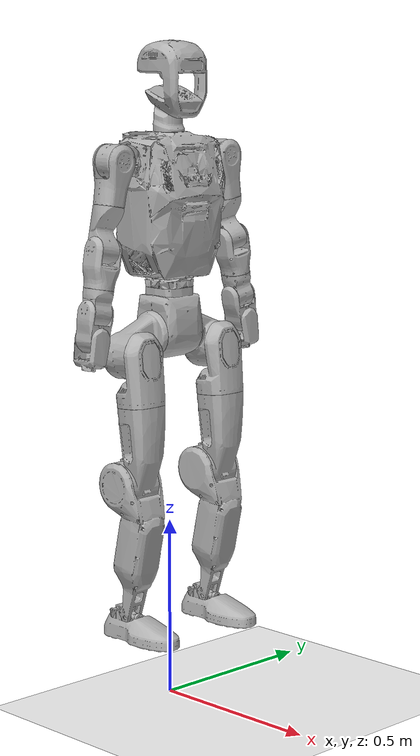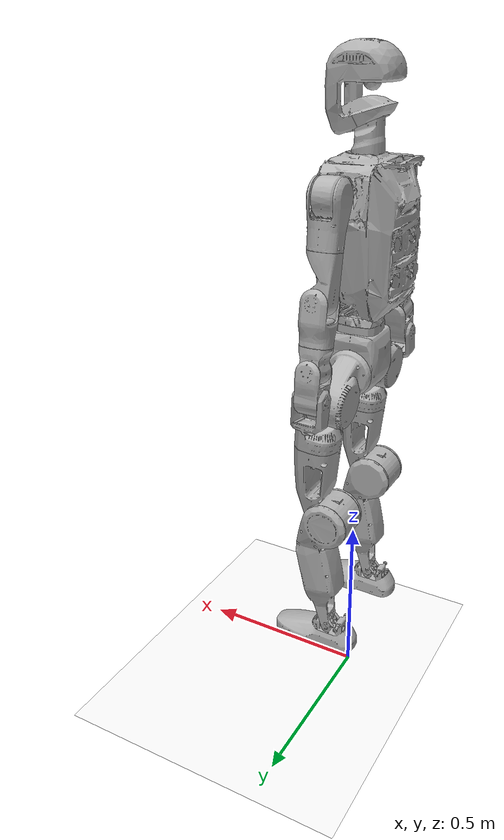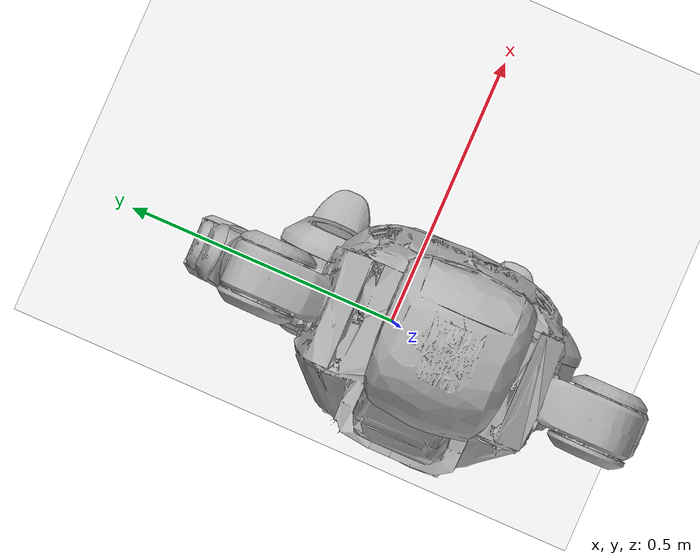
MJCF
<mujoco model="m2v6_27dof_rev_1_0">
    <compiler angle="radian" meshdir="meshes_reduce/" autolimits="true"/>

    <default>
        <default class="m2v6">
            <geom condim="1" contype="0" conaffinity="0"/>
            <joint damping="0.05" armature="0.01" frictionloss="0.2"/>

            <default class="hip">
                <default class="hip_pitch">
                    <joint axis="0 1 0" range="-2.71368 2.87138" actuatorfrcrange="-130 130" armature="0.063828"/>
                </default>
                <default class="hip_roll">
                    <joint axis="1 0 0" actuatorfrcrange="-330 330" armature="0.274752"/>
                </default>
                <default class="hip_yaw">
                    <joint axis="0 0 1" range="-2.87979 2.87979" actuatorfrcrange="-70 70" armature="0.057648938"/>
                </default>
            </default>
            <default class="knee">
                <joint axis="0 1 0" range="-0.08727 2.87979" actuatorfrcrange="-330 330" armature="0.274752"/>
            </default>
            <default class="ankle">
                <default class="ankle_pitch">
                    <joint axis="0 1 0" range="-0.87266 0.5236" actuatorfrcrange="-60 60" armature="0.03875"/>
                </default>
                <default class="ankle_roll">
                    <joint axis="1 0 0" range="-0.2618 0.2618" actuatorfrcrange="-60 60" armature="0.03875"/>
                </default>
            </default>
            <default class="waist">
                <joint axis="0 0 1" range="-2.44346 2.44346" actuatorfrcrange="-70 70" armature="0.057648938"/>
            </default>
            <default class="shoulder">
                <default class="shoulder_pitch">
                    <joint axis="0 1 0" range="-3.14159 2.44346" actuatorfrcrange="-90 90" armature="0.031752"/>
                </default>
                <default class="shoulder_roll">
                    <joint axis="1 0 0" actuatorfrcrange="-36 36" armature="0.023328"/>
                </default>
                <default class="shoulder_yaw">
                    <joint axis="0 0 1" range="-2.79253 2.79253" actuatorfrcrange="-36 36" armature="0.023328"/>
                </default>
            </default>
            <default class="elbow">
                <joint axis="0 1 0" range="-2.44346 1.5708" actuatorfrcrange="-36 36" armature="0.023328"/>
            </default>
            <default class="wrist">
                <default class="wrist_yaw">
                    <joint axis="0 0 1" range="-2.44346 2.44346" actuatorfrcrange="-36 36" armature="0.023328"/>
                </default>
                <default class="wrist_pitch">
                    <joint axis="0 1 0" range="-1.65806 1.65806" actuatorfrcrange="-36 36" armature="0.023328"/>
                </default>
                <default class="wrist_roll">
                    <joint axis="1 0 0" range="-1.91986 1.91986" actuatorfrcrange="-36 36" armature="0.023328"/>
                </default>
            </default>

            <default class="visual">
                <geom group="2" type="mesh" density="0" material="silver" contype="0" conaffinity="0"/>
            </default>
            <default class="collision">
                <geom group="3" rgba=".2 .6 .2 .3" type="capsule" contype="1" conaffinity="1"/>
                <default class="foot_capsule">
                <geom type="capsule" size="0.01"/>
                </default>
            </default>
            <site group="5" rgba="1 0 0 1"/>
        </default>
    </default>

    <asset>
        <material name="silver" rgba="0.7 0.7 0.7 1"/>
        <material name="black" rgba="0.2 0.2 0.2 1"/>

        <mesh name="pelvis" file="pelvis_link.STL"/>

        <mesh name="left_hip_pitch_link" file="left_hip_pitch_link.STL"/>
        <mesh name="left_hip_roll_link" file="left_hip_roll_link.STL"/>
        <mesh name="left_hip_yaw_link" file="left_hip_yaw_link.STL"/>
        <mesh name="left_knee_link" file="left_knee_link.STL"/>
        <mesh name="left_ankle_pitch_link"
              file="left_ankle_pitch_link.STL"/>
        <mesh name="left_ankle_roll_link" file="left_ankle_roll_link.STL"/>
        <mesh name="right_hip_pitch_link" file="right_hip_pitch_link.STL"/>
        <mesh name="right_hip_roll_link" file="right_hip_roll_link.STL"/>
        <mesh name="right_hip_yaw_link" file="right_hip_yaw_link.STL"/>
        <mesh name="right_knee_link" file="right_knee_link.STL"/>
        <mesh name="right_ankle_pitch_link"
              file="right_ankle_pitch_link.STL"/>
        <mesh name="right_ankle_roll_link"
              file="right_ankle_roll_link.STL"/>

        <mesh name="torso_link" file="torso_link.STL"/>

        <mesh name="left_shoulder_pitch_link"
              file="left_shoulder_pitch_link.STL"/>
        <mesh name="left_shoulder_roll_link"
              file="left_shoulder_roll_link.STL"/>
        <mesh name="left_shoulder_yaw_link"
              file="left_shoulder_yaw_link.STL"/>
        <mesh name="left_elbow_link" file="left_elbow_link.STL"/>
        <mesh name="left_wrist_yaw_link" file="left_wrist_yaw_link.STL"/>
        <mesh name="left_wrist_pitch_link" file="left_wrist_pitch_link.STL"/>
        <mesh name="left_wrist_roll_link" file="left_wrist_roll_link.STL"/>
        <mesh name="left_rubber_hand" file="left_hand_link.STL"/>

        <mesh name="right_shoulder_pitch_link"
              file="right_shoulder_pitch_link.STL"/>
        <mesh name="right_shoulder_roll_link"
              file="right_shoulder_roll_link.STL"/>
        <mesh name="right_shoulder_yaw_link"
              file="right_shoulder_yaw_link.STL"/>
        <mesh name="right_elbow_link" file="right_elbow_link.STL"/>
        <mesh name="right_wrist_yaw_link" file="right_wrist_yaw_link.STL"/>
        <mesh name="right_wrist_pitch_link" file="right_wrist_pitch_link.STL"/>
        <mesh name="right_wrist_roll_link" file="right_wrist_roll_link.STL"/>
        <mesh name="right_rubber_hand" file="right_hand_link.STL"/>

        <mesh name="head_yaw_link" file="head_yaw_link.STL" />
        <mesh name="head_pitch_link" file="head_pitch_link.STL" />

    </asset>

    <worldbody>
        <light name="spotlight" mode="targetbodycom" target="pelvis_link" pos="0 -2 4" exponent="20"/>
        <body name="pelvis_link" pos="0 0 1.1" childclass="m2v6">
            <camera name="tracking" pos="1.734 -1.135 .35" xyaxes="0.552 0.834 -0.000 -0.170 0.112 0.979" mode="trackcom"/>
            <inertial pos="0.000404 2.32e-06 -0.0507628" quat="0.999814 0.00051 -0.0192091 -0.001634" mass="3.751" diaginertia="0.0136351 0.0123701 0.0106031"/>
            <freejoint name="floating_base_joint"/>
            <geom class="visual" mesh="pelvis"/>
            <geom name="pelvis_collision" class="collision" type="sphere" size="0.08" pos="0 0 -0.065"/>
            <site name="imu_in_pelvis" size="0.01" pos="0.0 0.0 -0.12153" />

            <body name="left_hip_pitch_link" pos="0 0.0645 -0.066">
                <inertial pos="0.0085536 0.0788795 -0.043761" quat="0.3931855 0.8881544 0.2181438 -0.0948693" mass="2.8802" diaginertia="0.0042339 0.0036165 0.0020071"/>
                <joint name="left_hip_pitch_joint" class="hip_pitch"/>
                <geom class="visual" mesh="left_hip_pitch_link"/>

                <body name="left_hip_roll_link" pos="0.0039383 0.0855 -0.049845" quat="0.999223 0 -0.0394143 0">
                    <inertial pos="0.0362143 0.0001356 -0.0989265" quat="0.9866859 -0.0010695 -0.1620377 0.0139144" mass="1.49636" diaginertia="0.0058925 0.0055939 0.0024366"/>
                    <joint name="left_hip_roll_joint" pos="0 0 0" range="-0.5236 2.96706" class="hip_roll" />
                    <geom class="visual" mesh="left_hip_roll_link"/>
                    <geom name="left_hip_collision" class="collision" size="0.056" fromto="0.02 0.0 0.015 0.02 0.0 -0.08"/>

                    <body name="left_hip_yaw_link" pos="0.026 0 -0.1505">
                        <inertial pos="-0.0382311 0.0043708 -0.1646913" quat="0.5571708 -0.1671556 -0.0999463 0.8072363" mass="3.9129" diaginertia="0.0249074 0.023221 0.0046711"/>
                        <joint name="left_hip_yaw_joint" class="hip_yaw"/>
                        <geom class="visual" mesh="left_hip_yaw_link"/>
                        <geom name="left_thigh_collision" class="collision" size="0.056" fromto="0.0 0.0 0.0 0.0 0.0 -0.05"/>

                        <body name="left_knee_link" pos="-0.058 0 -0.2045" quat="0.999223 0 0.0394143 0">
                            <inertial pos="0.0344943 -0.000167 -0.1592361" quat="0.9998913 -0.0011232 -0.0123323 0.0079994" mass="3.11084" diaginertia="0.0339105 0.0334615 0.0062204"/>
                            <joint name="left_knee_joint" class="knee"/>
                            <geom class="visual" mesh="left_knee_link"/>
                            <geom name="left_knee_collision" class="collision" type="cylinder" pos="0 0 0" euler="1.57 0 0" size="0.065 0.06" />
                            <geom name="left2_knee_collision" pos="0.08 0.0 -0.05" euler ="0 -0.25 0" class="collision" type="box" size="0.005 0.045 0.03" />
                            <geom name="left_shin_collision" class="collision" size="0.048" fromto="0.045 0.0 -0.089 0.009 0.0 -0.25"/>
                            <geom name="left_linkage_brace_collision" class="collision" size="0.03" fromto="0.01 0.0 -0.28 -0.02 0.0 -0.375"/>

                            <body name="left_ankle_pitch_link" pos="0 0 -0.375">
                                <inertial pos="-0.0005629 0 -0.000547" quat="0.5093492 0.4904726 0.4904726 0.5093492" mass="0.15783" diaginertia="4.625e-05 4.43942e-05 1.33758e-05"/>
                                <joint name="left_ankle_pitch_joint" class="ankle_pitch"/>
                                <geom class="visual" mesh="left_ankle_pitch_link"/>

                                <body name="left_ankle_roll_link">
                                    <site name="left_foot" rgba="1 0 0 1"/>
                                    <inertial pos="0.0223678 -1.4e-06 -0.0293285" quat="5.489121e-06 0.6585183 9.952085e-06 0.7525647" mass="1.36478" diaginertia="0.0067589 0.0065105 0.0013947"/>
                                    <joint name="left_ankle_roll_joint" class="ankle_roll"/>
                                    <geom class="visual" mesh="left_ankle_roll_link"/>

                                    <geom name="left_foot1_collision" class="foot_capsule" fromto="0.045 -0.045 -0.051 0.12 -0.04 -0.051"/>
                                    <geom name="left_foot2_collision" class="foot_capsule" fromto="-0.064 -0.033 -0.051 0.143 -0.033 -0.051"/>
                                    <geom name="left_foot3_collision" class="foot_capsule" fromto="-0.070 -0.026 -0.051 0.156 -0.026 -0.051"/>
                                    <geom name="left_foot4_collision" class="foot_capsule" fromto="-0.074 -0.018 -0.051 0.163 -0.018 -0.051"/>
                                    <geom name="left_foot5_collision" class="foot_capsule" fromto="-0.075 -0.01 -0.051 0.166 -0.01 -0.051"/>
                                    <geom name="left_foot6_collision" class="foot_capsule" fromto="-0.076 0.0 -0.051 0.167 0.0 -0.051"/>
                                    <geom name="left_foot7_collision" class="foot_capsule" fromto="-0.075 0.01 -0.051 0.166 0.01 -0.051"/>
                                    <geom name="left_foot8_collision" class="foot_capsule" fromto="-0.074 0.018 -0.051 0.163 0.018 -0.051"/>
                                    <geom name="left_foot9_collision" class="foot_capsule" fromto="-0.071 0.026 -0.051 0.156 0.026 -0.051"/>
                                    <geom name="left_foot10_collision" class="foot_capsule" fromto="-0.064 0.033 -0.051 0.142 0.033 -0.051"/>
                                    <geom name="left_foot11_collision" class="foot_capsule" fromto="0.045 0.045 -0.051 0.124 0.04 -0.051"/>
                                </body>
                            </body>
                        </body>
                    </body>
                </body>
            </body>

            <body name="right_hip_pitch_link" pos="0 -0.0645 -0.066">
                <inertial pos="0.0084981 -0.0785883 -0.0434711" quat="0.8895725 0.3905326 0.0944105 -0.2173286" mass="2.8802" diaginertia="0.0043342 0.0036905 0.002026"/>
                <joint name="right_hip_pitch_joint" class="hip_pitch"/>
                <geom class="visual" mesh="right_hip_pitch_link"/>

                <body name="right_hip_roll_link" pos="0.0039383 -0.0855 -0.049845" quat="0.999223 0 -0.0394143 0">
                    <inertial pos="0.0362144 -0.0001352 -0.0989269" quat="0.9866419 0.0016207 -0.1620342 -0.0167358" mass="1.49635" diaginertia="0.0058924 0.0055937 0.0024365"/>
                    <joint name="right_hip_roll_joint" pos="0 0 0" range="-2.96706 0.5236"  class="hip_roll"/>
                    <geom class="visual" mesh="right_hip_roll_link"/>
                    <geom name="right_hip_collision" class="collision" size="0.056" fromto="0.02 0.0 0.015 0.02 0.0 -0.08"/>

                    <body name="right_hip_yaw_link" pos="0.026 0 -0.1505">
                        <inertial pos="-0.0382354 -0.0043703 -0.164687" quat="0.80724 -0.099955 -0.1671828 0.5571557" mass="3.9129" diaginertia="0.0249068 0.02322 0.0046714"/>
                        <joint name="right_hip_yaw_joint" class="hip_yaw"/>
                        <geom class="visual" mesh="right_hip_yaw_link"/>
                        <geom name="right_thigh_collision" class="collision" size="0.056" fromto="0.0 0.0 0.0 0.0 0.0 -0.05"/>

                        <body name="right_knee_link" pos="-0.058 0 -0.2045" quat="0.999223 0 0.0394143 0">
                            <inertial pos="0.0344941 0.0001685 -0.1592379" quat="0.9998954 0.0010636 -0.0123263 -0.007489" mass="3.11092" diaginertia="0.033912 0.0334629 0.0062206"/>
                            <joint name="right_knee_joint" class="knee"/>
                            <geom class="visual" mesh="right_knee_link"/>
                            <geom name="right_knee_collision" class="collision" type="cylinder" pos="0 0 0" euler="1.57 0 0" size="0.065 0.06" />
                            <geom name="right2_knee_collision" pos="0.08 0.0 -0.05" euler ="0 -0.25 0" class="collision" type="box" size="0.005 0.045 0.03" />
                            <geom name="right_shin_collision" class="collision" size="0.048" fromto="0.045 0.0 -0.089 0.009 0.0 -0.25"/>
                            <geom name="right_linkage_brace_collision" class="collision" size="0.03" fromto="0.01 0.0 -0.28 -0.02 0.0 -0.375"/>

                            <body name="right_ankle_pitch_link" pos="0 0 -0.375">
                                <inertial pos="-0.0005629 0 -0.000547" quat="0.5093492 0.4904726 0.4904726 0.5093492" mass="0.15783" diaginertia="4.625e-05 4.43942e-05 1.33758e-05"/>
                                <joint name="right_ankle_pitch_joint" class="ankle_pitch"/>
                                <geom class="visual" mesh="right_ankle_pitch_link"/>

                                <body name="right_ankle_roll_link">
                                    <site name="right_foot" pos="0 0 0"/>
                                    <inertial pos="0.0223678 -1.4e-06 -0.0293285" quat="5.489121e-06 0.6585183 9.952085e-06 0.7525647" mass="1.36478" diaginertia="0.0067589 0.0065105 0.0013947"/>
                                    <joint name="right_ankle_roll_joint" class="ankle_roll"/>
                                    <geom class="visual" mesh="right_ankle_roll_link"/>

                                    <geom name="right_foot1_collision" class="foot_capsule" fromto="0.045 -0.045 -0.051 0.12 -0.04 -0.051"/>
                                    <geom name="right_foot2_collision" class="foot_capsule" fromto="-0.064 -0.033 -0.051 0.143 -0.033 -0.051"/>
                                    <geom name="right_foot3_collision" class="foot_capsule" fromto="-0.070 -0.026 -0.051 0.156 -0.026 -0.051"/>
                                    <geom name="right_foot4_collision" class="foot_capsule" fromto="-0.074 -0.018 -0.051 0.163 -0.018 -0.051"/>
                                    <geom name="right_foot5_collision" class="foot_capsule" fromto="-0.075 -0.01 -0.051 0.166 -0.01 -0.051"/>
                                    <geom name="right_foot6_collision" class="foot_capsule" fromto="-0.076 0.0 -0.051 0.167 0.0 -0.051"/>
                                    <geom name="right_foot7_collision" class="foot_capsule" fromto="-0.075 0.01 -0.051 0.166 0.01 -0.051"/>
                                    <geom name="right_foot8_collision" class="foot_capsule" fromto="-0.074 0.018 -0.051 0.163 0.018 -0.051"/>
                                    <geom name="right_foot9_collision" class="foot_capsule" fromto="-0.071 0.026 -0.051 0.156 0.026 -0.051"/>
                                    <geom name="right_foot10_collision" class="foot_capsule" fromto="-0.064 0.033 -0.051 0.142 0.033 -0.051"/>
                                    <geom name="right_foot11_collision" class="foot_capsule" fromto="0.045 0.045 -0.051 0.124 0.04 -0.051"/>
                                </body>
                            </body>
                        </body>
                    </body>
                </body>
            </body>

            <body name="torso_link" pos="0 0 0">
                <inertial pos="-0.0189168 0.0012999 0.2633349" quat="0.999788 1.340745e-05 -0.0205878 0.00028" mass="15.85368" diaginertia="0.271644 0.237095 0.110372"/>
                <joint name="waist_joint" pos="0 0 0" class="waist" />
                <geom class="visual" mesh="torso_link"/>
                <geom name="torso_collision" class="collision" type="box" size="0.065 0.1 0.19" pos="0 0 0.28"/>
                <geom name="torso2_collision" class="collision" type="cylinder" size="0.06 0.03" pos="0 0 0.06"/>

                <site name="imu_in_torso" size="0.01" pos="-0.03959 -0.00224 0.14792"/>

                <body name="left_shoulder_pitch_link" pos="0 0.13245 0.39503" quat="0.9961948 0.0871543 0 0">
                    <inertial pos="0.0021981 0.0545562 0.0012038" quat="0.683798 0.7294789 0.0161216 -0.0045821" mass="0.80439" diaginertia="0.0010368 0.0009251 0.0004845"/>
                    <joint name="left_shoulder_pitch_joint" class="shoulder_pitch"/>
                    <geom class="visual" mesh="left_shoulder_pitch_link"/>
                    <geom name="left_shoulder_pitch_collision" pos="0 0.067 0" euler="0 1.57 0" class="collision" type="cylinder" size="0.045 0.04"/>

                    <body name="left_shoulder_roll_link" pos="0 0.067888 0">
                        <inertial pos="0.0007508 -0.0004299 -0.0743968" quat="0.999684 -0.0016586 -0.0250111 -0.0018752" mass="0.87106" diaginertia="0.0017015 0.0018499 0.0007555"/>
                        <joint name="left_shoulder_roll_joint" range="-0.20944 3.1765" class="shoulder_roll"/>
                        <geom class="visual" mesh="left_shoulder_roll_link"/>

                        <body name="left_shoulder_yaw_link" pos="0 0 -0.11641">
                            <inertial pos="-0.0023623 0.0042327 -0.0980338" quat="0.6304836 0.0184993 0.027176 0.7755061" mass="0.72854" diaginertia="0.0013035 0.0013347 0.0003721"/>
                            <joint name="left_shoulder_yaw_joint" class="shoulder_yaw"/>
                            <geom class="visual" mesh="left_shoulder_yaw_link"/>
                            <geom name="left_shoulder_yaw_collision" class="collision" size="0.042" fromto="0.0 0.0 0.0 0.0 0.0 0.028"/>

                            <body name="left_elbow_link" pos="0 0 -0.12009">
                                <inertial pos="-3.03e-05 0.000562 -0.0637671" quat="0.710494 0.0401343 -0.0370188 0.7015819" mass="0.73794" diaginertia="0.00094 0.0010846 0.0005811"/>
                                <joint name="left_elbow_joint" class="elbow"/>
                                <geom class="visual" mesh="left_elbow_link"/>

                                <geom name="left_elbow_collision" pos="0 0 0" euler="1.57 0 0" class="collision" type="cylinder" size="0.035 0.045" />

                                <body name="left_wrist_yaw_link" pos="0 0 -0.10341">
                                    <inertial pos="6.16e-06 0.0035763 -0.0533539" quat="0.722265 0.6899619 -0.0304978 -0.0368214" mass="0.63961" diaginertia="0.000462 0.0002745 0.0004576"/>
                                    <joint name="left_wrist_yaw_joint" class="wrist_yaw"/>
                                    <geom class="visual" mesh="left_wrist_yaw_link"/>

                                    <body name="left_wrist_pitch_link" pos="0 0 -0.062589">
                                        <inertial pos="-0.0044641 0.0009752 -0.0590826" quat="0.687268 0.003598 -0.0648158 0.7234975" mass="0.65835" diaginertia="0.0006618 0.0007666 0.0003909"/>
                                        <joint name="left_wrist_pitch_joint" class="wrist_pitch"/>
                                        <geom class="visual" mesh="left_wrist_pitch_link"/>
                                        <geom name="left_wrist_pitch_collision" pos="0 0 0" euler="1.57 0 0" class="collision" type="cylinder" size="0.033 0.038" />

                                        <body name="left_wrist_roll_link" pos="0 0 -0.07">
                                            <inertial pos="-0.0010672 5.79e-06 -0.0387109" quat="0.6887192 0.1636446 0.1633307 0.6871749" mass="0.21364" diaginertia="0.0004477 0.0002932 0.0002797"/>
                                            <joint name="left_wrist_roll_joint" class="wrist_roll"/>
                                            <geom class="visual" mesh="left_wrist_roll_link"/>
                                            <geom name="left_wrist_roll_collision" class="collision" size="0.04" fromto="0.0 0.0 -0.05 0.0 0.0 0.0"/>

                                        </body>
                                    </body>
                                </body>
                            </body>
                        </body>
                    </body>
                </body>

                <body name="right_shoulder_pitch_link" pos="0 -0.13245 0.39503" quat="0.9961948 -0.0871543 0 0">
                    <inertial pos="0.0021976 -0.0545562 0.0013209" quat="0.7284641 0.6848601 0.0051751 -0.0167327" mass="0.80437" diaginertia="0.0010366 0.0009249 0.0004844"/>
                    <joint name="right_shoulder_pitch_joint" class="shoulder_pitch"/>
                    <geom class="visual" mesh="right_shoulder_pitch_link"/>
                    <geom name="right_shoulder_pitch_collision" pos="0 -0.067 0" euler="0 1.57 0" class="collision" type="cylinder" size="0.045 0.04"/>

                    <body name="right_shoulder_roll_link" pos="0 -0.067888 0">
                        <inertial pos="0.000761 0.0003239 -0.0743964" quat="0.9996851 0.0022652 -0.0249604 0.0012388" mass="0.87075" diaginertia="0.0017014 0.0018494 0.0007551"/>
                        <joint name="right_shoulder_roll_joint" range="-3.1765 0.20944" class="shoulder_roll"/>
                        <geom class="visual" mesh="right_shoulder_roll_link"/>

                        <body name="right_shoulder_yaw_link" pos="0 0 -0.11641">
                            <inertial pos="-0.0022424 -0.0042335 -0.0979902" quat="0.7759291 0.0278039 0.0192985 0.6299115" mass="0.72855" diaginertia="0.0013025 0.0013336 0.0003723"/>
                            <joint name="right_shoulder_yaw_joint" class="shoulder_yaw"/>
                            <geom class="visual" mesh="right_shoulder_yaw_link"/>
                            <geom name="right_shoulder_yaw_collision" class="collision" size="0.042" fromto="0.0 0.0 0.0 0.0 0.0 0.028"/>

                            <body name="right_elbow_link" pos="0 0 -0.12009">
                                <inertial pos="9.493e-05 -0.0005624 -0.0637674" quat="0.70136 -0.0362373 0.0408741 0.7107111" mass="0.73793" diaginertia="0.00094 0.0010846 0.000581"/>
                                <joint name="right_elbow_joint" class="elbow"/>
                                <geom class="visual" mesh="right_elbow_link"/>
                                <geom name="right_elbow_collision" pos="0 0 0" euler="1.57 0 0" class="collision" type="cylinder" size="0.035 0.045" />

                                <body name="right_wrist_yaw_link" pos="0 0 -0.10341">
                                    <inertial pos="-0.0001411 -0.0035802 -0.0533539" quat="0.6902387 0.7222323 0.0327514 0.0296374" mass="0.63961" diaginertia="0.0004618 0.0002744 0.0004575"/>
                                    <joint name="right_wrist_yaw_joint" class="wrist_yaw"/>
                                    <geom class="visual" mesh="right_wrist_yaw_link"/>

                                    <body name="right_wrist_pitch_link" pos="0 0 -0.062589">
                                        <inertial pos="-0.0044643 -0.0008322 -0.0590832" quat="0.7237397 -0.0661447 0.004944 0.6868779" mass="0.65834" diaginertia="0.000662 0.0007667 0.0003908"/>
                                        <joint name="right_wrist_pitch_joint" class="wrist_pitch"/>
                                        <geom class="visual" mesh="right_wrist_pitch_link"/>
                                        <geom name="right_wrist_pitch_collision" pos="0 0 0" euler="1.57 0 0" class="collision" type="cylinder" size="0.033 0.038" />

                                        <body name="right_wrist_roll_link" pos="0 0 -0.07">
                                            <inertial pos="-0.001584 5.71e-06 -0.038157" quat="0.6785642 0.2015935 0.2012403 0.6770621" mass="0.21663" diaginertia="0.0004567 0.0003019 0.0002804"/>
                                            <joint name="right_wrist_roll_joint" class="wrist_roll"/>
                                            <geom class="visual" mesh="right_wrist_roll_link"/>
                                            <geom name="right_wrist_roll_collision" class="collision" size="0.04" fromto="0.0 0.0 -0.05 0.0 0.0 0.0"/>

                                        </body>
                                    </body>
                                </body>
                            </body>
                        </body>
                    </body>
                </body>

                <body name="head_yaw_link" pos="0 0 0.48242">
                  <inertial pos="-0.0004622 0.0021663 0.0376231" quat="0.7338522 0.0392207 0.001983 0.6781731" mass="0.65859" diaginertia="0.0009654 0.0009946 0.0004073"/>
                  <geom class="visual" mesh="head_yaw_link"/>

                  <body name="head_pitch_link" pos="0 0 0.076">
                    <inertial pos="0.0175949 0.0012013 0.0819239" quat="0.4106879 0.5808592 0.6114724 0.3464673" mass="1.08266" diaginertia="0.0043996 0.0031765 0.003915"/>
                    <geom class="visual" mesh="head_pitch_link"/>
                    <geom name="head_collision" class="collision" type="sphere" size="0.07" pos="0.0 0.0 0.06"/>
                  </body>
                </body>
            </body>
        </body>
    </worldbody>

    <contact>
        <exclude body1="left_elbow_link" body2="left_wrist_pitch_link"/>
        <exclude body1="right_elbow_link" body2="right_wrist_pitch_link"/>
        <exclude body1="pelvis_link" body2="right_hip_roll_link"/>
        <exclude body1="pelvis_link" body2="left_hip_roll_link"/>
    </contact>
    <sensor>
        <gyro name="imu_ang_vel" site="imu_in_pelvis"/>
        <velocimeter name="imu_lin_vel" site="imu_in_pelvis"/>
        <accelerometer name="imu_lin_acc" site="imu_in_pelvis"/>
        <subtreeangmom name="root_angmom" body="pelvis_link"/>
    </sensor>
      <statistic center="1.0 0.7 1.0" extent="0.8"/>
  <visual>
    <headlight diffuse="0.6 0.6 0.6" ambient="0.1 0.1 0.1" specular="0.9 0.9 0.9"/>
    <rgba haze="0.15 0.25 0.35 1"/>
    <global azimuth="-140" elevation="-20" offwidth="2080" offheight="1170"/>
  </visual>
  <asset>
     <texture type="skybox" builtin="gradient" rgb1="1 1 1" rgb2="1 1 1" width="800" height="800"/>
    <texture type="2d" name="groundplane" builtin="checker" mark="edge" rgb1="1 1 1" rgb2="1 1 1" markrgb="0 0 0"
      width="300" height="300"/>
    <material name="groundplane" texture="groundplane" texuniform="true" texrepeat="5 5" reflectance="0"/>
    <texture type="skybox" builtin="gradient" rgb1=".4 .5 .6" rgb2="0 0 0" width="100" height="100"/>
    <texture builtin="flat" height="1278" mark="cross" markrgb="1 1 1" name="texgeom" random="0.01" rgb1="0.8 0.6 0.4" rgb2="0.8 0.6 0.4" type="cube" width="127"/>
    <texture name="texplane" builtin="checker" height="512" width="512" rgb1=".2 .3 .4" rgb2=".1 .15 .2" type="2d" />
    <material name="MatPlane" reflectance="0.5" shininess="0.01" specular="0.1" texrepeat="1 1" texture="texplane" texuniform="true" />
    <material name="geom" texture="texgeom" texuniform="true"/>
  </asset>
   <worldbody>
    <geom name="floor" size="0 0 0.01" type="plane" material="groundplane" contype="1" conaffinity="0" priority="1"
      friction="0.6" condim="3"/>

    <!-- Simple Box Chair -->

        <light diffuse=".5 .5 .5" pos="-3 -3 5" dir="3 3 -5" castshadow="true"/>

  </worldbody>
</mujoco>
